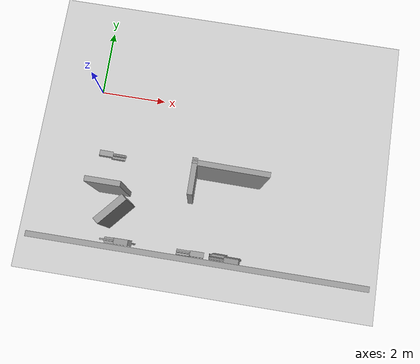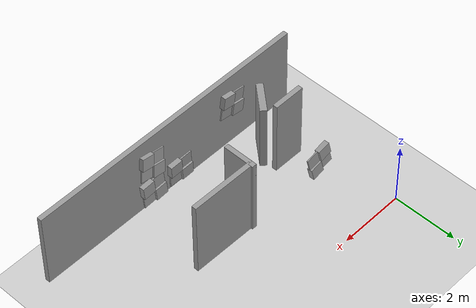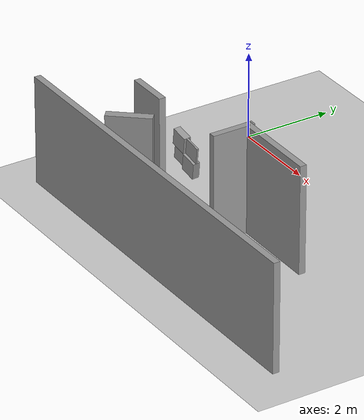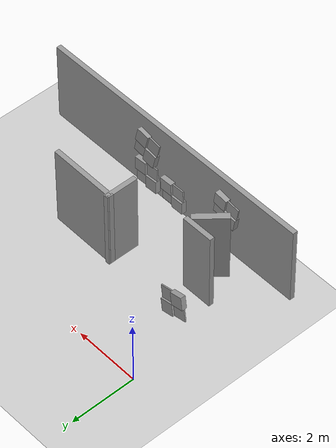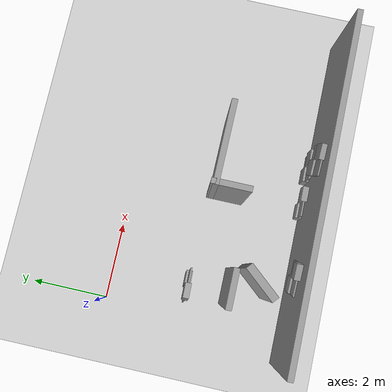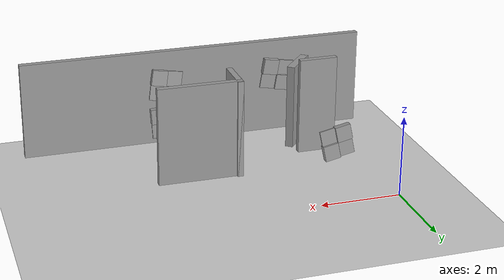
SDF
<sdf version="1.7">
 <world name="default">
  <model name="demo_clean">
   <static>1</static>
   <link name="Wall_16">
    <collision name="Wall_16_Collision">
     <geometry><box><size>9 0.15 2.5</size></box></geometry>
     <pose>0 0 1.25 0 -0 0</pose>
     <surface>
      <friction>
       <ode><mu>1</mu><mu2>1</mu2><fdir1>0 0 0</fdir1><slip1>0</slip1><slip2>0</slip2></ode>
       <torsional>
        <coefficient>1</coefficient>
        <patch_radius>0</patch_radius>
        <surface_radius>0</surface_radius>
        <use_patch_radius>1</use_patch_radius>
        <ode><slip>0</slip></ode>
       </torsional>
      </friction>
      <bounce><restitution_coefficient>0</restitution_coefficient><threshold>1e+06</threshold></bounce>
      <contact>
       <collide_without_contact>0</collide_without_contact>
       <collide_without_contact_bitmask>1</collide_without_contact_bitmask>
       <collide_bitmask>1</collide_bitmask>
       <ode>
        <soft_cfm>0</soft_cfm>
        <soft_erp>0.2</soft_erp>
        <kp>1e+13</kp>
        <kd>1</kd>
        <max_vel>0.01</max_vel>
        <min_depth>0</min_depth>
       </ode>
       <bullet>
        <split_impulse>1</split_impulse>
        <split_impulse_penetration_threshold>-0.01</split_impulse_penetration_threshold>
        <soft_cfm>0</soft_cfm>
        <soft_erp>0.2</soft_erp>
        <kp>1e+13</kp>
        <kd>1</kd>
       </bullet>
      </contact>
     </surface>
    </collision>
    <visual name="Wall_16_Visual">
     <geometry><box><size>9 0.15 2.5</size></box></geometry>
     <material>
      <script><name>Gazebo/Grey</name><uri>file://media/materials/scripts/gazebo.material</uri></script>
      <ambient>1 1 1 1</ambient>
      <shader type="pixel"><normal_map>default</normal_map></shader>
     </material>
     <pose>0 0 1.25 0 -0 0</pose>
    </visual>
    <pose>3.76125 -4.74021 0 0 -0 3.14159</pose>
   </link>
   <link name="Wall_23">
    <collision name="Wall_23_Collision">
     <geometry><box><size>0.981708 0.15 2.5</size></box></geometry>
     <pose>0 0 1.25 0 -0 0</pose>
     <surface>
      <friction>
       <ode><mu>1</mu><mu2>1</mu2><fdir1>0 0 0</fdir1><slip1>0</slip1><slip2>0</slip2></ode>
       <torsional>
        <coefficient>1</coefficient>
        <patch_radius>0</patch_radius>
        <surface_radius>0</surface_radius>
        <use_patch_radius>1</use_patch_radius>
        <ode><slip>0</slip></ode>
       </torsional>
      </friction>
      <bounce><restitution_coefficient>0</restitution_coefficient><threshold>1e+06</threshold></bounce>
      <contact>
       <collide_without_contact>0</collide_without_contact>
       <collide_without_contact_bitmask>1</collide_without_contact_bitmask>
       <collide_bitmask>1</collide_bitmask>
       <ode>
        <soft_cfm>0</soft_cfm>
        <soft_erp>0.2</soft_erp>
        <kp>1e+13</kp>
        <kd>1</kd>
        <max_vel>0.01</max_vel>
        <min_depth>0</min_depth>
       </ode>
       <bullet>
        <split_impulse>1</split_impulse>
        <split_impulse_penetration_threshold>-0.01</split_impulse_penetration_threshold>
        <soft_cfm>0</soft_cfm>
        <soft_erp>0.2</soft_erp>
        <kp>1e+13</kp>
        <kd>1</kd>
       </bullet>
      </contact>
     </surface>
    </collision>
    <visual name="Wall_23_Visual">
     <geometry><box><size>0.981708 0.15 2.5</size></box></geometry>
     <material>
      <script><name>Gazebo/Grey</name><uri>file://media/materials/scripts/gazebo.material</uri></script>
      <ambient>1 1 1 1</ambient>
      <shader type="pixel"><normal_map>default</normal_map></shader>
     </material>
     <pose>0 0 1.25 0 -0 0</pose>
    </visual>
    <inertial>
     <inertia><ixx>0</ixx><iyy>0</iyy><izz>0</izz><ixy>0</ixy><ixz>0</ixz><iyz>0</iyz></inertia>
     <mass>1</mass>
    </inertial>
    <pose>0.983425 -3.07697 0 0 -0 0</pose>
   </link>
   <link name="Wall_35">
    <collision name="Wall_35_Collision">
     <geometry><box><size>2.12444 0.15 2.5</size></box></geometry>
     <pose>0 0 1.25 0 -0 0</pose>
     <surface>
      <friction>
       <ode><mu>1</mu><mu2>1</mu2><fdir1>0 0 0</fdir1><slip1>0</slip1><slip2>0</slip2></ode>
       <torsional>
        <coefficient>1</coefficient>
        <patch_radius>0</patch_radius>
        <surface_radius>0</surface_radius>
        <use_patch_radius>1</use_patch_radius>
        <ode><slip>0</slip></ode>
       </torsional>
      </friction>
      <bounce><restitution_coefficient>0</restitution_coefficient><threshold>1e+06</threshold></bounce>
      <contact>
       <collide_without_contact>0</collide_without_contact>
       <collide_without_contact_bitmask>1</collide_without_contact_bitmask>
       <collide_bitmask>1</collide_bitmask>
       <ode>
        <soft_cfm>0</soft_cfm>
        <soft_erp>0.2</soft_erp>
        <kp>1e+13</kp>
        <kd>1</kd>
        <max_vel>0.01</max_vel>
        <min_depth>0</min_depth>
       </ode>
       <bullet>
        <split_impulse>1</split_impulse>
        <split_impulse_penetration_threshold>-0.01</split_impulse_penetration_threshold>
        <soft_cfm>0</soft_cfm>
        <soft_erp>0.2</soft_erp>
        <kp>1e+13</kp>
        <kd>1</kd>
       </bullet>
      </contact>
     </surface>
    </collision>
    <visual name="Wall_35_Visual">
     <geometry><box><size>2.12444 0.15 2.5</size></box></geometry>
     <material>
      <script><name>Gazebo/Grey</name><uri>file://media/materials/scripts/gazebo.material</uri></script>
      <ambient>1 1 1 1</ambient>
      <shader type="pixel"><normal_map>default</normal_map></shader>
     </material>
     <pose>0 0 1.25 0 -0 0</pose>
    </visual>
    <pose>4.31686 -2.19973 0 0 -0 3.13123</pose>
   </link>
   <link name="Wall_48">
    <collision name="Wall_48_Collision">
     <geometry><box><size>0.15 0.15 2.5</size></box></geometry>
     <pose>0 0 1.25 0 -0 0</pose>
     <surface>
      <friction>
       <ode><mu>1</mu><mu2>1</mu2><fdir1>0 0 0</fdir1><slip1>0</slip1><slip2>0</slip2></ode>
       <torsional>
        <coefficient>1</coefficient>
        <patch_radius>0</patch_radius>
        <surface_radius>0</surface_radius>
        <use_patch_radius>1</use_patch_radius>
        <ode><slip>0</slip></ode>
       </torsional>
      </friction>
      <bounce><restitution_coefficient>0</restitution_coefficient><threshold>1e+06</threshold></bounce>
      <contact>
       <collide_without_contact>0</collide_without_contact>
       <collide_without_contact_bitmask>1</collide_without_contact_bitmask>
       <collide_bitmask>1</collide_bitmask>
       <ode>
        <soft_cfm>0</soft_cfm>
        <soft_erp>0.2</soft_erp>
        <kp>1e+13</kp>
        <kd>1</kd>
        <max_vel>0.01</max_vel>
        <min_depth>0</min_depth>
       </ode>
       <bullet>
        <split_impulse>1</split_impulse>
        <split_impulse_penetration_threshold>-0.01</split_impulse_penetration_threshold>
        <soft_cfm>0</soft_cfm>
        <soft_erp>0.2</soft_erp>
        <kp>1e+13</kp>
        <kd>1</kd>
       </bullet>
      </contact>
     </surface>
    </collision>
    <visual name="Wall_48_Visual">
     <geometry><box><size>0.15 0.15 2.5</size></box></geometry>
     <material>
      <script><name>Gazebo/Grey</name><uri>file://media/materials/scripts/gazebo.material</uri></script>
      <ambient>1 1 1 1</ambient>
      <shader type="pixel"><normal_map>default</normal_map></shader>
     </material>
     <pose>0 0 1.25 0 -0 0</pose>
    </visual>
    <pose>3.33073 -2.13943 0 0 -0 0</pose>
   </link>
   <link name="Wall_49">
    <collision name="Wall_49_Collision">
     <geometry><box><size>1 0.15 2.5</size></box></geometry>
     <pose>0 0 1.25 0 -0 0</pose>
     <surface>
      <friction>
       <ode><mu>1</mu><mu2>1</mu2><fdir1>0 0 0</fdir1><slip1>0</slip1><slip2>0</slip2></ode>
       <torsional>
        <coefficient>1</coefficient>
        <patch_radius>0</patch_radius>
        <surface_radius>0</surface_radius>
        <use_patch_radius>1</use_patch_radius>
        <ode><slip>0</slip></ode>
       </torsional>
      </friction>
      <bounce><restitution_coefficient>0</restitution_coefficient><threshold>1e+06</threshold></bounce>
      <contact>
       <collide_without_contact>0</collide_without_contact>
       <collide_without_contact_bitmask>1</collide_without_contact_bitmask>
       <collide_bitmask>1</collide_bitmask>
       <ode>
        <soft_cfm>0</soft_cfm>
        <soft_erp>0.2</soft_erp>
        <kp>1e+13</kp>
        <kd>1</kd>
        <max_vel>0.01</max_vel>
        <min_depth>0</min_depth>
       </ode>
       <bullet>
        <split_impulse>1</split_impulse>
        <split_impulse_penetration_threshold>-0.01</split_impulse_penetration_threshold>
        <soft_cfm>0</soft_cfm>
        <soft_erp>0.2</soft_erp>
        <kp>1e+13</kp>
        <kd>1</kd>
       </bullet>
      </contact>
     </surface>
    </collision>
    <visual name="Wall_49_Visual">
     <geometry><box><size>1 0.15 2.5</size></box></geometry>
     <material>
      <script><name>Gazebo/Grey</name><uri>file://media/materials/scripts/gazebo.material</uri></script>
      <ambient>1 1 1 1</ambient>
      <shader type="pixel"><normal_map>default</normal_map></shader>
     </material>
     <pose>0 0 1.25 0 -0 0</pose>
    </visual>
    <pose>3.33073 -2.56443 0 0 0 -1.5708</pose>
   </link>
  </model>
  <model name="ground_plane">
   <static>1</static>
   <link name="link">
    <collision name="collision">
     <geometry><plane><normal>0 0 1</normal><size>100 100</size></plane></geometry>
     <surface>
      <contact><collide_bitmask>65535</collide_bitmask></contact>
      <friction><ode><mu>100</mu><mu2>50</mu2></ode></friction>
     </surface>
    </collision>
    <visual name="visual">
     <cast_shadows>0</cast_shadows>
     <geometry><plane><normal>0 0 1</normal><size>100 100</size></plane></geometry>
     <material>
      <script><uri>file://media/materials/scripts/gazebo.material</uri><name>Gazebo/Grey</name></script>
     </material>
    </visual>
   </link>
  </model>
  <model name="wall_slate_14">
   <static>1</static>
   <link name="link_0">
    <inertial><mass>1</mass></inertial>
    <gravity>0</gravity>
    <visual name="visual">
     <pose>0 0.2 0.2 0 -0 0</pose>
     <geometry><box><size>0.16 0.4 0.4</size></box></geometry>
     <material>
      <lighting>1</lighting>
      <script><uri>file://media/materials/scripts/gazebo.material</uri><name>Gazebo/Grey</name></script>
      <shader type="pixel"><normal_map>__default__</normal_map></shader>
      <ambient>0.3 0.3 0.3 1</ambient>
      <diffuse>0.7 0.7 0.7 1</diffuse>
      <specular>0.01 0.01 0.01 1</specular>
      <emissive>0 0 0 1</emissive>
     </material>
    </visual>
    <visual name="ModelPreview_0::link_0::visual_1">
     <pose>0 0.2 -0.2 0 -0 0</pose>
     <geometry><box><size>0.04 0.4 0.4</size></box></geometry>
     <material>
      <lighting>1</lighting>
      <script><uri>file://media/materials/scripts/gazebo.material</uri><name>Gazebo/Grey</name></script>
      <shader type="pixel"><normal_map>__default__</normal_map></shader>
      <ambient>0.3 0.3 0.3 1</ambient>
      <diffuse>0.7 0.7 0.7 1</diffuse>
      <specular>0.01 0.01 0.01 1</specular>
      <emissive>0 0 0 1</emissive>
     </material>
    </visual>
    <visual name="ModelPreview_0::link_0::visual_2">
     <pose>0 -0.2 0.2 0 -0 0</pose>
     <geometry><box><size>0.04 0.4 0.4</size></box></geometry>
     <material>
      <lighting>1</lighting>
      <script><uri>file://media/materials/scripts/gazebo.material</uri><name>Gazebo/Grey</name></script>
      <shader type="pixel"><normal_map>__default__</normal_map></shader>
      <ambient>0.3 0.3 0.3 1</ambient>
      <diffuse>0.7 0.7 0.7 1</diffuse>
      <specular>0.01 0.01 0.01 1</specular>
      <emissive>0 0 0 1</emissive>
     </material>
    </visual>
    <visual name="ModelPreview_0::link_0::visual_3">
     <pose>0 -0.2 -0.2 0 -0 0</pose>
     <geometry><box><size>0.16 0.4 0.4</size></box></geometry>
     <material>
      <lighting>1</lighting>
      <script><uri>file://media/materials/scripts/gazebo.material</uri><name>Gazebo/Grey</name></script>
      <shader type="pixel"><normal_map>__default__</normal_map></shader>
      <ambient>0.3 0.3 0.3 1</ambient>
      <diffuse>0.7 0.7 0.7 1</diffuse>
      <specular>0.01 0.01 0.01 1</specular>
      <emissive>0 0 0 1</emissive>
     </material>
    </visual>
    <collision name="collision_2">
     <pose>0 -0.2 0.2 0 -0 0</pose>
     <geometry><box><size>0.04 0.4 0.4</size></box></geometry>
     <surface>
      <friction>
       <ode><mu>1</mu><mu2>1</mu2><fdir1>0 0 0</fdir1><slip1>0</slip1><slip2>0</slip2></ode>
       <torsional>
        <coefficient>1</coefficient>
        <patch_radius>0</patch_radius>
        <surface_radius>0</surface_radius>
        <use_patch_radius>1</use_patch_radius>
        <ode><slip>0</slip></ode>
       </torsional>
      </friction>
      <bounce><restitution_coefficient>0</restitution_coefficient><threshold>1e+06</threshold></bounce>
      <contact>
       <collide_without_contact>0</collide_without_contact>
       <collide_without_contact_bitmask>1</collide_without_contact_bitmask>
       <collide_bitmask>1</collide_bitmask>
       <ode>
        <soft_cfm>0</soft_cfm>
        <soft_erp>0.2</soft_erp>
        <kp>1e+13</kp>
        <kd>1</kd>
        <max_vel>0.01</max_vel>
        <min_depth>0</min_depth>
       </ode>
       <bullet>
        <split_impulse>1</split_impulse>
        <split_impulse_penetration_threshold>-0.01</split_impulse_penetration_threshold>
        <soft_cfm>0</soft_cfm>
        <soft_erp>0.2</soft_erp>
        <kp>1e+13</kp>
        <kd>1</kd>
       </bullet>
      </contact>
     </surface>
    </collision>
    <collision name="collision_1">
     <pose>0 0.2 -0.2 0 -0 0</pose>
     <geometry><box><size>0.04 0.4 0.4</size></box></geometry>
     <surface>
      <friction>
       <ode><mu>1</mu><mu2>1</mu2><fdir1>0 0 0</fdir1><slip1>0</slip1><slip2>0</slip2></ode>
       <torsional>
        <coefficient>1</coefficient>
        <patch_radius>0</patch_radius>
        <surface_radius>0</surface_radius>
        <use_patch_radius>1</use_patch_radius>
        <ode><slip>0</slip></ode>
       </torsional>
      </friction>
      <bounce><restitution_coefficient>0</restitution_coefficient><threshold>1e+06</threshold></bounce>
      <contact>
       <collide_without_contact>0</collide_without_contact>
       <collide_without_contact_bitmask>1</collide_without_contact_bitmask>
       <collide_bitmask>1</collide_bitmask>
       <ode>
        <soft_cfm>0</soft_cfm>
        <soft_erp>0.2</soft_erp>
        <kp>1e+13</kp>
        <kd>1</kd>
        <max_vel>0.01</max_vel>
        <min_depth>0</min_depth>
       </ode>
       <bullet>
        <split_impulse>1</split_impulse>
        <split_impulse_penetration_threshold>-0.01</split_impulse_penetration_threshold>
        <soft_cfm>0</soft_cfm>
        <soft_erp>0.2</soft_erp>
        <kp>1e+13</kp>
        <kd>1</kd>
       </bullet>
      </contact>
     </surface>
    </collision>
    <collision name="collision_4">
     <pose>0 0.2 0.2 0 -0 0</pose>
     <geometry><box><size>0.16 0.4 0.4</size></box></geometry>
     <surface>
      <friction>
       <ode><mu>1</mu><mu2>1</mu2><fdir1>0 0 0</fdir1><slip1>0</slip1><slip2>0</slip2></ode>
       <torsional>
        <coefficient>1</coefficient>
        <patch_radius>0</patch_radius>
        <surface_radius>0</surface_radius>
        <use_patch_radius>1</use_patch_radius>
        <ode><slip>0</slip></ode>
       </torsional>
      </friction>
      <bounce><restitution_coefficient>0</restitution_coefficient><threshold>1e+06</threshold></bounce>
      <contact>
       <collide_without_contact>0</collide_without_contact>
       <collide_without_contact_bitmask>1</collide_without_contact_bitmask>
       <collide_bitmask>1</collide_bitmask>
       <ode>
        <soft_cfm>0</soft_cfm>
        <soft_erp>0.2</soft_erp>
        <kp>1e+13</kp>
        <kd>1</kd>
        <max_vel>0.01</max_vel>
        <min_depth>0</min_depth>
       </ode>
       <bullet>
        <split_impulse>1</split_impulse>
        <split_impulse_penetration_threshold>-0.01</split_impulse_penetration_threshold>
        <soft_cfm>0</soft_cfm>
        <soft_erp>0.2</soft_erp>
        <kp>1e+13</kp>
        <kd>1</kd>
       </bullet>
      </contact>
     </surface>
    </collision>
    <collision name="collision_3">
     <pose>0 -0.2 -0.2 0 -0 0</pose>
     <geometry><box><size>0.16 0.4 0.4</size></box></geometry>
     <surface>
      <friction>
       <ode><mu>1</mu><mu2>1</mu2><fdir1>0 0 0</fdir1><slip1>0</slip1><slip2>0</slip2></ode>
       <torsional>
        <coefficient>1</coefficient>
        <patch_radius>0</patch_radius>
        <surface_radius>0</surface_radius>
        <use_patch_radius>1</use_patch_radius>
        <ode><slip>0</slip></ode>
       </torsional>
      </friction>
      <bounce><restitution_coefficient>0</restitution_coefficient><threshold>1e+06</threshold></bounce>
      <contact>
       <collide_without_contact>0</collide_without_contact>
       <collide_without_contact_bitmask>1</collide_without_contact_bitmask>
       <collide_bitmask>1</collide_bitmask>
       <ode>
        <soft_cfm>0</soft_cfm>
        <soft_erp>0.2</soft_erp>
        <kp>1e+13</kp>
        <kd>1</kd>
        <max_vel>0.01</max_vel>
        <min_depth>0</min_depth>
       </ode>
       <bullet>
        <split_impulse>1</split_impulse>
        <split_impulse_penetration_threshold>-0.01</split_impulse_penetration_threshold>
        <soft_cfm>0</soft_cfm>
        <soft_erp>0.2</soft_erp>
        <kp>1e+13</kp>
        <kd>1</kd>
       </bullet>
      </contact>
     </surface>
    </collision>
   </link>
   <pose>4.56125 -4.56521 1.6 0.16 0.1 -1.5659</pose>
  </model>
  <model name="wall_slate_69">
   <static>1</static>
   <link name="link_0">
    <inertial><mass>1</mass></inertial>
    <gravity>0</gravity>
    <visual name="visual">
     <pose>0 0.2 0.2 0 -0 0</pose>
     <geometry><box><size>0.16 0.4 0.4</size></box></geometry>
     <material>
      <lighting>1</lighting>
      <script><uri>file://media/materials/scripts/gazebo.material</uri><name>Gazebo/Grey</name></script>
      <shader type="pixel"><normal_map>__default__</normal_map></shader>
      <ambient>0.3 0.3 0.3 1</ambient>
      <diffuse>0.7 0.7 0.7 1</diffuse>
      <specular>0.01 0.01 0.01 1</specular>
      <emissive>0 0 0 1</emissive>
     </material>
    </visual>
    <visual name="ModelPreview_0::link_0::visual_1">
     <pose>0 0.2 -0.2 0 -0 0</pose>
     <geometry><box><size>0.04 0.4 0.4</size></box></geometry>
     <material>
      <lighting>1</lighting>
      <script><uri>file://media/materials/scripts/gazebo.material</uri><name>Gazebo/Grey</name></script>
      <shader type="pixel"><normal_map>__default__</normal_map></shader>
      <ambient>0.3 0.3 0.3 1</ambient>
      <diffuse>0.7 0.7 0.7 1</diffuse>
      <specular>0.01 0.01 0.01 1</specular>
      <emissive>0 0 0 1</emissive>
     </material>
    </visual>
    <visual name="ModelPreview_0::link_0::visual_2">
     <pose>0 -0.2 0.2 0 -0 0</pose>
     <geometry><box><size>0.04 0.4 0.4</size></box></geometry>
     <material>
      <lighting>1</lighting>
      <script><uri>file://media/materials/scripts/gazebo.material</uri><name>Gazebo/Grey</name></script>
      <shader type="pixel"><normal_map>__default__</normal_map></shader>
      <ambient>0.3 0.3 0.3 1</ambient>
      <diffuse>0.7 0.7 0.7 1</diffuse>
      <specular>0.01 0.01 0.01 1</specular>
      <emissive>0 0 0 1</emissive>
     </material>
    </visual>
    <visual name="ModelPreview_0::link_0::visual_3">
     <pose>0 -0.2 -0.2 0 -0 0</pose>
     <geometry><box><size>0.16 0.4 0.4</size></box></geometry>
     <material>
      <lighting>1</lighting>
      <script><uri>file://media/materials/scripts/gazebo.material</uri><name>Gazebo/Grey</name></script>
      <shader type="pixel"><normal_map>__default__</normal_map></shader>
      <ambient>0.3 0.3 0.3 1</ambient>
      <diffuse>0.7 0.7 0.7 1</diffuse>
      <specular>0.01 0.01 0.01 1</specular>
      <emissive>0 0 0 1</emissive>
     </material>
    </visual>
    <collision name="collision_2">
     <pose>0 -0.2 0.2 0 -0 0</pose>
     <geometry><box><size>0.04 0.4 0.4</size></box></geometry>
     <surface>
      <friction>
       <ode><mu>1</mu><mu2>1</mu2><fdir1>0 0 0</fdir1><slip1>0</slip1><slip2>0</slip2></ode>
       <torsional>
        <coefficient>1</coefficient>
        <patch_radius>0</patch_radius>
        <surface_radius>0</surface_radius>
        <use_patch_radius>1</use_patch_radius>
        <ode><slip>0</slip></ode>
       </torsional>
      </friction>
      <bounce><restitution_coefficient>0</restitution_coefficient><threshold>1e+06</threshold></bounce>
      <contact>
       <collide_without_contact>0</collide_without_contact>
       <collide_without_contact_bitmask>1</collide_without_contact_bitmask>
       <collide_bitmask>1</collide_bitmask>
       <ode>
        <soft_cfm>0</soft_cfm>
        <soft_erp>0.2</soft_erp>
        <kp>1e+13</kp>
        <kd>1</kd>
        <max_vel>0.01</max_vel>
        <min_depth>0</min_depth>
       </ode>
       <bullet>
        <split_impulse>1</split_impulse>
        <split_impulse_penetration_threshold>-0.01</split_impulse_penetration_threshold>
        <soft_cfm>0</soft_cfm>
        <soft_erp>0.2</soft_erp>
        <kp>1e+13</kp>
        <kd>1</kd>
       </bullet>
      </contact>
     </surface>
    </collision>
    <collision name="collision_1">
     <pose>0 0.2 -0.2 0 -0 0</pose>
     <geometry><box><size>0.04 0.4 0.4</size></box></geometry>
     <surface>
      <friction>
       <ode><mu>1</mu><mu2>1</mu2><fdir1>0 0 0</fdir1><slip1>0</slip1><slip2>0</slip2></ode>
       <torsional>
        <coefficient>1</coefficient>
        <patch_radius>0</patch_radius>
        <surface_radius>0</surface_radius>
        <use_patch_radius>1</use_patch_radius>
        <ode><slip>0</slip></ode>
       </torsional>
      </friction>
      <bounce><restitution_coefficient>0</restitution_coefficient><threshold>1e+06</threshold></bounce>
      <contact>
       <collide_without_contact>0</collide_without_contact>
       <collide_without_contact_bitmask>1</collide_without_contact_bitmask>
       <collide_bitmask>1</collide_bitmask>
       <ode>
        <soft_cfm>0</soft_cfm>
        <soft_erp>0.2</soft_erp>
        <kp>1e+13</kp>
        <kd>1</kd>
        <max_vel>0.01</max_vel>
        <min_depth>0</min_depth>
       </ode>
       <bullet>
        <split_impulse>1</split_impulse>
        <split_impulse_penetration_threshold>-0.01</split_impulse_penetration_threshold>
        <soft_cfm>0</soft_cfm>
        <soft_erp>0.2</soft_erp>
        <kp>1e+13</kp>
        <kd>1</kd>
       </bullet>
      </contact>
     </surface>
    </collision>
    <collision name="collision_4">
     <pose>0 0.2 0.2 0 -0 0</pose>
     <geometry><box><size>0.16 0.4 0.4</size></box></geometry>
     <surface>
      <friction>
       <ode><mu>1</mu><mu2>1</mu2><fdir1>0 0 0</fdir1><slip1>0</slip1><slip2>0</slip2></ode>
       <torsional>
        <coefficient>1</coefficient>
        <patch_radius>0</patch_radius>
        <surface_radius>0</surface_radius>
        <use_patch_radius>1</use_patch_radius>
        <ode><slip>0</slip></ode>
       </torsional>
      </friction>
      <bounce><restitution_coefficient>0</restitution_coefficient><threshold>1e+06</threshold></bounce>
      <contact>
       <collide_without_contact>0</collide_without_contact>
       <collide_without_contact_bitmask>1</collide_without_contact_bitmask>
       <collide_bitmask>1</collide_bitmask>
       <ode>
        <soft_cfm>0</soft_cfm>
        <soft_erp>0.2</soft_erp>
        <kp>1e+13</kp>
        <kd>1</kd>
        <max_vel>0.01</max_vel>
        <min_depth>0</min_depth>
       </ode>
       <bullet>
        <split_impulse>1</split_impulse>
        <split_impulse_penetration_threshold>-0.01</split_impulse_penetration_threshold>
        <soft_cfm>0</soft_cfm>
        <soft_erp>0.2</soft_erp>
        <kp>1e+13</kp>
        <kd>1</kd>
       </bullet>
      </contact>
     </surface>
    </collision>
    <collision name="collision_3">
     <pose>0 -0.2 -0.2 0 -0 0</pose>
     <geometry><box><size>0.16 0.4 0.4</size></box></geometry>
     <surface>
      <friction>
       <ode><mu>1</mu><mu2>1</mu2><fdir1>0 0 0</fdir1><slip1>0</slip1><slip2>0</slip2></ode>
       <torsional>
        <coefficient>1</coefficient>
        <patch_radius>0</patch_radius>
        <surface_radius>0</surface_radius>
        <use_patch_radius>1</use_patch_radius>
        <ode><slip>0</slip></ode>
       </torsional>
      </friction>
      <bounce><restitution_coefficient>0</restitution_coefficient><threshold>1e+06</threshold></bounce>
      <contact>
       <collide_without_contact>0</collide_without_contact>
       <collide_without_contact_bitmask>1</collide_without_contact_bitmask>
       <collide_bitmask>1</collide_bitmask>
       <ode>
        <soft_cfm>0</soft_cfm>
        <soft_erp>0.2</soft_erp>
        <kp>1e+13</kp>
        <kd>1</kd>
        <max_vel>0.01</max_vel>
        <min_depth>0</min_depth>
       </ode>
       <bullet>
        <split_impulse>1</split_impulse>
        <split_impulse_penetration_threshold>-0.01</split_impulse_penetration_threshold>
        <soft_cfm>0</soft_cfm>
        <soft_erp>0.2</soft_erp>
        <kp>1e+13</kp>
        <kd>1</kd>
       </bullet>
      </contact>
     </surface>
    </collision>
   </link>
   <pose>0.795923 -2.06788 0.6 0.2 -0.06 1.5757</pose>
  </model>
  <model name="wall_slate_83">
   <static>1</static>
   <link name="link_0">
    <inertial><mass>1</mass></inertial>
    <gravity>0</gravity>
    <visual name="visual">
     <pose>0 0.2 0.2 0 -0 0</pose>
     <geometry><box><size>0.16 0.4 0.4</size></box></geometry>
     <material>
      <lighting>1</lighting>
      <script><uri>file://media/materials/scripts/gazebo.material</uri><name>Gazebo/Grey</name></script>
      <shader type="pixel"><normal_map>__default__</normal_map></shader>
      <ambient>0.3 0.3 0.3 1</ambient>
      <diffuse>0.7 0.7 0.7 1</diffuse>
      <specular>0.01 0.01 0.01 1</specular>
      <emissive>0 0 0 1</emissive>
     </material>
    </visual>
    <visual name="ModelPreview_0::link_0::visual_1">
     <pose>0 0.2 -0.2 0 -0 0</pose>
     <geometry><box><size>0.04 0.4 0.4</size></box></geometry>
     <material>
      <lighting>1</lighting>
      <script><uri>file://media/materials/scripts/gazebo.material</uri><name>Gazebo/Grey</name></script>
      <shader type="pixel"><normal_map>__default__</normal_map></shader>
      <ambient>0.3 0.3 0.3 1</ambient>
      <diffuse>0.7 0.7 0.7 1</diffuse>
      <specular>0.01 0.01 0.01 1</specular>
      <emissive>0 0 0 1</emissive>
     </material>
    </visual>
    <visual name="ModelPreview_0::link_0::visual_2">
     <pose>0 -0.2 0.2 0 -0 0</pose>
     <geometry><box><size>0.04 0.4 0.4</size></box></geometry>
     <material>
      <lighting>1</lighting>
      <script><uri>file://media/materials/scripts/gazebo.material</uri><name>Gazebo/Grey</name></script>
      <shader type="pixel"><normal_map>__default__</normal_map></shader>
      <ambient>0.3 0.3 0.3 1</ambient>
      <diffuse>0.7 0.7 0.7 1</diffuse>
      <specular>0.01 0.01 0.01 1</specular>
      <emissive>0 0 0 1</emissive>
     </material>
    </visual>
    <visual name="ModelPreview_0::link_0::visual_3">
     <pose>0 -0.2 -0.2 0 -0 0</pose>
     <geometry><box><size>0.16 0.4 0.4</size></box></geometry>
     <material>
      <lighting>1</lighting>
      <script><uri>file://media/materials/scripts/gazebo.material</uri><name>Gazebo/Grey</name></script>
      <shader type="pixel"><normal_map>__default__</normal_map></shader>
      <ambient>0.3 0.3 0.3 1</ambient>
      <diffuse>0.7 0.7 0.7 1</diffuse>
      <specular>0.01 0.01 0.01 1</specular>
      <emissive>0 0 0 1</emissive>
     </material>
    </visual>
    <collision name="collision_2">
     <pose>0 -0.2 0.2 0 -0 0</pose>
     <geometry><box><size>0.04 0.4 0.4</size></box></geometry>
     <surface>
      <friction>
       <ode><mu>1</mu><mu2>1</mu2><fdir1>0 0 0</fdir1><slip1>0</slip1><slip2>0</slip2></ode>
       <torsional>
        <coefficient>1</coefficient>
        <patch_radius>0</patch_radius>
        <surface_radius>0</surface_radius>
        <use_patch_radius>1</use_patch_radius>
        <ode><slip>0</slip></ode>
       </torsional>
      </friction>
      <bounce><restitution_coefficient>0</restitution_coefficient><threshold>1e+06</threshold></bounce>
      <contact>
       <collide_without_contact>0</collide_without_contact>
       <collide_without_contact_bitmask>1</collide_without_contact_bitmask>
       <collide_bitmask>1</collide_bitmask>
       <ode>
        <soft_cfm>0</soft_cfm>
        <soft_erp>0.2</soft_erp>
        <kp>1e+13</kp>
        <kd>1</kd>
        <max_vel>0.01</max_vel>
        <min_depth>0</min_depth>
       </ode>
       <bullet>
        <split_impulse>1</split_impulse>
        <split_impulse_penetration_threshold>-0.01</split_impulse_penetration_threshold>
        <soft_cfm>0</soft_cfm>
        <soft_erp>0.2</soft_erp>
        <kp>1e+13</kp>
        <kd>1</kd>
       </bullet>
      </contact>
     </surface>
    </collision>
    <collision name="collision_1">
     <pose>0 0.2 -0.2 0 -0 0</pose>
     <geometry><box><size>0.04 0.4 0.4</size></box></geometry>
     <surface>
      <friction>
       <ode><mu>1</mu><mu2>1</mu2><fdir1>0 0 0</fdir1><slip1>0</slip1><slip2>0</slip2></ode>
       <torsional>
        <coefficient>1</coefficient>
        <patch_radius>0</patch_radius>
        <surface_radius>0</surface_radius>
        <use_patch_radius>1</use_patch_radius>
        <ode><slip>0</slip></ode>
       </torsional>
      </friction>
      <bounce><restitution_coefficient>0</restitution_coefficient><threshold>1e+06</threshold></bounce>
      <contact>
       <collide_without_contact>0</collide_without_contact>
       <collide_without_contact_bitmask>1</collide_without_contact_bitmask>
       <collide_bitmask>1</collide_bitmask>
       <ode>
        <soft_cfm>0</soft_cfm>
        <soft_erp>0.2</soft_erp>
        <kp>1e+13</kp>
        <kd>1</kd>
        <max_vel>0.01</max_vel>
        <min_depth>0</min_depth>
       </ode>
       <bullet>
        <split_impulse>1</split_impulse>
        <split_impulse_penetration_threshold>-0.01</split_impulse_penetration_threshold>
        <soft_cfm>0</soft_cfm>
        <soft_erp>0.2</soft_erp>
        <kp>1e+13</kp>
        <kd>1</kd>
       </bullet>
      </contact>
     </surface>
    </collision>
    <collision name="collision_4">
     <pose>0 0.2 0.2 0 -0 0</pose>
     <geometry><box><size>0.16 0.4 0.4</size></box></geometry>
     <surface>
      <friction>
       <ode><mu>1</mu><mu2>1</mu2><fdir1>0 0 0</fdir1><slip1>0</slip1><slip2>0</slip2></ode>
       <torsional>
        <coefficient>1</coefficient>
        <patch_radius>0</patch_radius>
        <surface_radius>0</surface_radius>
        <use_patch_radius>1</use_patch_radius>
        <ode><slip>0</slip></ode>
       </torsional>
      </friction>
      <bounce><restitution_coefficient>0</restitution_coefficient><threshold>1e+06</threshold></bounce>
      <contact>
       <collide_without_contact>0</collide_without_contact>
       <collide_without_contact_bitmask>1</collide_without_contact_bitmask>
       <collide_bitmask>1</collide_bitmask>
       <ode>
        <soft_cfm>0</soft_cfm>
        <soft_erp>0.2</soft_erp>
        <kp>1e+13</kp>
        <kd>1</kd>
        <max_vel>0.01</max_vel>
        <min_depth>0</min_depth>
       </ode>
       <bullet>
        <split_impulse>1</split_impulse>
        <split_impulse_penetration_threshold>-0.01</split_impulse_penetration_threshold>
        <soft_cfm>0</soft_cfm>
        <soft_erp>0.2</soft_erp>
        <kp>1e+13</kp>
        <kd>1</kd>
       </bullet>
      </contact>
     </surface>
    </collision>
    <collision name="collision_3">
     <pose>0 -0.2 -0.2 0 -0 0</pose>
     <geometry><box><size>0.16 0.4 0.4</size></box></geometry>
     <surface>
      <friction>
       <ode><mu>1</mu><mu2>1</mu2><fdir1>0 0 0</fdir1><slip1>0</slip1><slip2>0</slip2></ode>
       <torsional>
        <coefficient>1</coefficient>
        <patch_radius>0</patch_radius>
        <surface_radius>0</surface_radius>
        <use_patch_radius>1</use_patch_radius>
        <ode><slip>0</slip></ode>
       </torsional>
      </friction>
      <bounce><restitution_coefficient>0</restitution_coefficient><threshold>1e+06</threshold></bounce>
      <contact>
       <collide_without_contact>0</collide_without_contact>
       <collide_without_contact_bitmask>1</collide_without_contact_bitmask>
       <collide_bitmask>1</collide_bitmask>
       <ode>
        <soft_cfm>0</soft_cfm>
        <soft_erp>0.2</soft_erp>
        <kp>1e+13</kp>
        <kd>1</kd>
        <max_vel>0.01</max_vel>
        <min_depth>0</min_depth>
       </ode>
       <bullet>
        <split_impulse>1</split_impulse>
        <split_impulse_penetration_threshold>-0.01</split_impulse_penetration_threshold>
        <soft_cfm>0</soft_cfm>
        <soft_erp>0.2</soft_erp>
        <kp>1e+13</kp>
        <kd>1</kd>
       </bullet>
      </contact>
     </surface>
    </collision>
   </link>
   <pose>4.56125 -4.56521 0.6 -0.06 0.04 -1.5659</pose>
  </model>
  <model name="wall_slate_95">
   <static>1</static>
   <link name="link_0">
    <inertial><mass>1</mass></inertial>
    <gravity>0</gravity>
    <visual name="visual">
     <pose>0 0.2 0.2 0 -0 0</pose>
     <geometry><box><size>0.16 0.4 0.4</size></box></geometry>
     <material>
      <lighting>1</lighting>
      <script><uri>file://media/materials/scripts/gazebo.material</uri><name>Gazebo/Grey</name></script>
      <shader type="pixel"><normal_map>__default__</normal_map></shader>
      <ambient>0.3 0.3 0.3 1</ambient>
      <diffuse>0.7 0.7 0.7 1</diffuse>
      <specular>0.01 0.01 0.01 1</specular>
      <emissive>0 0 0 1</emissive>
     </material>
    </visual>
    <visual name="ModelPreview_0::link_0::visual_1">
     <pose>0 0.2 -0.2 0 -0 0</pose>
     <geometry><box><size>0.04 0.4 0.4</size></box></geometry>
     <material>
      <lighting>1</lighting>
      <script><uri>file://media/materials/scripts/gazebo.material</uri><name>Gazebo/Grey</name></script>
      <shader type="pixel"><normal_map>__default__</normal_map></shader>
      <ambient>0.3 0.3 0.3 1</ambient>
      <diffuse>0.7 0.7 0.7 1</diffuse>
      <specular>0.01 0.01 0.01 1</specular>
      <emissive>0 0 0 1</emissive>
     </material>
    </visual>
    <visual name="ModelPreview_0::link_0::visual_2">
     <pose>0 -0.2 0.2 0 -0 0</pose>
     <geometry><box><size>0.04 0.4 0.4</size></box></geometry>
     <material>
      <lighting>1</lighting>
      <script><uri>file://media/materials/scripts/gazebo.material</uri><name>Gazebo/Grey</name></script>
      <shader type="pixel"><normal_map>__default__</normal_map></shader>
      <ambient>0.3 0.3 0.3 1</ambient>
      <diffuse>0.7 0.7 0.7 1</diffuse>
      <specular>0.01 0.01 0.01 1</specular>
      <emissive>0 0 0 1</emissive>
     </material>
    </visual>
    <visual name="ModelPreview_0::link_0::visual_3">
     <pose>0 -0.2 -0.2 0 -0 0</pose>
     <geometry><box><size>0.16 0.4 0.4</size></box></geometry>
     <material>
      <lighting>1</lighting>
      <script><uri>file://media/materials/scripts/gazebo.material</uri><name>Gazebo/Grey</name></script>
      <shader type="pixel"><normal_map>__default__</normal_map></shader>
      <ambient>0.3 0.3 0.3 1</ambient>
      <diffuse>0.7 0.7 0.7 1</diffuse>
      <specular>0.01 0.01 0.01 1</specular>
      <emissive>0 0 0 1</emissive>
     </material>
    </visual>
    <collision name="collision_2">
     <pose>0 -0.2 0.2 0 -0 0</pose>
     <geometry><box><size>0.04 0.4 0.4</size></box></geometry>
     <surface>
      <friction>
       <ode><mu>1</mu><mu2>1</mu2><fdir1>0 0 0</fdir1><slip1>0</slip1><slip2>0</slip2></ode>
       <torsional>
        <coefficient>1</coefficient>
        <patch_radius>0</patch_radius>
        <surface_radius>0</surface_radius>
        <use_patch_radius>1</use_patch_radius>
        <ode><slip>0</slip></ode>
       </torsional>
      </friction>
      <bounce><restitution_coefficient>0</restitution_coefficient><threshold>1e+06</threshold></bounce>
      <contact>
       <collide_without_contact>0</collide_without_contact>
       <collide_without_contact_bitmask>1</collide_without_contact_bitmask>
       <collide_bitmask>1</collide_bitmask>
       <ode>
        <soft_cfm>0</soft_cfm>
        <soft_erp>0.2</soft_erp>
        <kp>1e+13</kp>
        <kd>1</kd>
        <max_vel>0.01</max_vel>
        <min_depth>0</min_depth>
       </ode>
       <bullet>
        <split_impulse>1</split_impulse>
        <split_impulse_penetration_threshold>-0.01</split_impulse_penetration_threshold>
        <soft_cfm>0</soft_cfm>
        <soft_erp>0.2</soft_erp>
        <kp>1e+13</kp>
        <kd>1</kd>
       </bullet>
      </contact>
     </surface>
    </collision>
    <collision name="collision_1">
     <pose>0 0.2 -0.2 0 -0 0</pose>
     <geometry><box><size>0.04 0.4 0.4</size></box></geometry>
     <surface>
      <friction>
       <ode><mu>1</mu><mu2>1</mu2><fdir1>0 0 0</fdir1><slip1>0</slip1><slip2>0</slip2></ode>
       <torsional>
        <coefficient>1</coefficient>
        <patch_radius>0</patch_radius>
        <surface_radius>0</surface_radius>
        <use_patch_radius>1</use_patch_radius>
        <ode><slip>0</slip></ode>
       </torsional>
      </friction>
      <bounce><restitution_coefficient>0</restitution_coefficient><threshold>1e+06</threshold></bounce>
      <contact>
       <collide_without_contact>0</collide_without_contact>
       <collide_without_contact_bitmask>1</collide_without_contact_bitmask>
       <collide_bitmask>1</collide_bitmask>
       <ode>
        <soft_cfm>0</soft_cfm>
        <soft_erp>0.2</soft_erp>
        <kp>1e+13</kp>
        <kd>1</kd>
        <max_vel>0.01</max_vel>
        <min_depth>0</min_depth>
       </ode>
       <bullet>
        <split_impulse>1</split_impulse>
        <split_impulse_penetration_threshold>-0.01</split_impulse_penetration_threshold>
        <soft_cfm>0</soft_cfm>
        <soft_erp>0.2</soft_erp>
        <kp>1e+13</kp>
        <kd>1</kd>
       </bullet>
      </contact>
     </surface>
    </collision>
    <collision name="collision_4">
     <pose>0 0.2 0.2 0 -0 0</pose>
     <geometry><box><size>0.16 0.4 0.4</size></box></geometry>
     <surface>
      <friction>
       <ode><mu>1</mu><mu2>1</mu2><fdir1>0 0 0</fdir1><slip1>0</slip1><slip2>0</slip2></ode>
       <torsional>
        <coefficient>1</coefficient>
        <patch_radius>0</patch_radius>
        <surface_radius>0</surface_radius>
        <use_patch_radius>1</use_patch_radius>
        <ode><slip>0</slip></ode>
       </torsional>
      </friction>
      <bounce><restitution_coefficient>0</restitution_coefficient><threshold>1e+06</threshold></bounce>
      <contact>
       <collide_without_contact>0</collide_without_contact>
       <collide_without_contact_bitmask>1</collide_without_contact_bitmask>
       <collide_bitmask>1</collide_bitmask>
       <ode>
        <soft_cfm>0</soft_cfm>
        <soft_erp>0.2</soft_erp>
        <kp>1e+13</kp>
        <kd>1</kd>
        <max_vel>0.01</max_vel>
        <min_depth>0</min_depth>
       </ode>
       <bullet>
        <split_impulse>1</split_impulse>
        <split_impulse_penetration_threshold>-0.01</split_impulse_penetration_threshold>
        <soft_cfm>0</soft_cfm>
        <soft_erp>0.2</soft_erp>
        <kp>1e+13</kp>
        <kd>1</kd>
       </bullet>
      </contact>
     </surface>
    </collision>
    <collision name="collision_3">
     <pose>0 -0.2 -0.2 0 -0 0</pose>
     <geometry><box><size>0.16 0.4 0.4</size></box></geometry>
     <surface>
      <friction>
       <ode><mu>1</mu><mu2>1</mu2><fdir1>0 0 0</fdir1><slip1>0</slip1><slip2>0</slip2></ode>
       <torsional>
        <coefficient>1</coefficient>
        <patch_radius>0</patch_radius>
        <surface_radius>0</surface_radius>
        <use_patch_radius>1</use_patch_radius>
        <ode><slip>0</slip></ode>
       </torsional>
      </friction>
      <bounce><restitution_coefficient>0</restitution_coefficient><threshold>1e+06</threshold></bounce>
      <contact>
       <collide_without_contact>0</collide_without_contact>
       <collide_without_contact_bitmask>1</collide_without_contact_bitmask>
       <collide_bitmask>1</collide_bitmask>
       <ode>
        <soft_cfm>0</soft_cfm>
        <soft_erp>0.2</soft_erp>
        <kp>1e+13</kp>
        <kd>1</kd>
        <max_vel>0.01</max_vel>
        <min_depth>0</min_depth>
       </ode>
       <bullet>
        <split_impulse>1</split_impulse>
        <split_impulse_penetration_threshold>-0.01</split_impulse_penetration_threshold>
        <soft_cfm>0</soft_cfm>
        <soft_erp>0.2</soft_erp>
        <kp>1e+13</kp>
        <kd>1</kd>
       </bullet>
      </contact>
     </surface>
    </collision>
   </link>
   <pose>3.56125 -4.56521 0.6 -0.02 -0.02 -1.5659</pose>
  </model>
  <model name="wall_slate_96">
   <static>1</static>
   <link name="link_0">
    <inertial><mass>1</mass></inertial>
    <gravity>0</gravity>
    <visual name="visual">
     <pose>0 0.2 0.2 0 -0 0</pose>
     <geometry><box><size>0.16 0.4 0.4</size></box></geometry>
     <material>
      <lighting>1</lighting>
      <script><uri>file://media/materials/scripts/gazebo.material</uri><name>Gazebo/Grey</name></script>
      <shader type="pixel"><normal_map>__default__</normal_map></shader>
      <ambient>0.3 0.3 0.3 1</ambient>
      <diffuse>0.7 0.7 0.7 1</diffuse>
      <specular>0.01 0.01 0.01 1</specular>
      <emissive>0 0 0 1</emissive>
     </material>
    </visual>
    <visual name="ModelPreview_0::link_0::visual_1">
     <pose>0 0.2 -0.2 0 -0 0</pose>
     <geometry><box><size>0.04 0.4 0.4</size></box></geometry>
     <material>
      <lighting>1</lighting>
      <script><uri>file://media/materials/scripts/gazebo.material</uri><name>Gazebo/Grey</name></script>
      <shader type="pixel"><normal_map>__default__</normal_map></shader>
      <ambient>0.3 0.3 0.3 1</ambient>
      <diffuse>0.7 0.7 0.7 1</diffuse>
      <specular>0.01 0.01 0.01 1</specular>
      <emissive>0 0 0 1</emissive>
     </material>
    </visual>
    <visual name="ModelPreview_0::link_0::visual_2">
     <pose>0 -0.2 0.2 0 -0 0</pose>
     <geometry><box><size>0.04 0.4 0.4</size></box></geometry>
     <material>
      <lighting>1</lighting>
      <script><uri>file://media/materials/scripts/gazebo.material</uri><name>Gazebo/Grey</name></script>
      <shader type="pixel"><normal_map>__default__</normal_map></shader>
      <ambient>0.3 0.3 0.3 1</ambient>
      <diffuse>0.7 0.7 0.7 1</diffuse>
      <specular>0.01 0.01 0.01 1</specular>
      <emissive>0 0 0 1</emissive>
     </material>
    </visual>
    <visual name="ModelPreview_0::link_0::visual_3">
     <pose>0 -0.2 -0.2 0 -0 0</pose>
     <geometry><box><size>0.16 0.4 0.4</size></box></geometry>
     <material>
      <lighting>1</lighting>
      <script><uri>file://media/materials/scripts/gazebo.material</uri><name>Gazebo/Grey</name></script>
      <shader type="pixel"><normal_map>__default__</normal_map></shader>
      <ambient>0.3 0.3 0.3 1</ambient>
      <diffuse>0.7 0.7 0.7 1</diffuse>
      <specular>0.01 0.01 0.01 1</specular>
      <emissive>0 0 0 1</emissive>
     </material>
    </visual>
    <collision name="collision_2">
     <pose>0 -0.2 0.2 0 -0 0</pose>
     <geometry><box><size>0.04 0.4 0.4</size></box></geometry>
     <surface>
      <friction>
       <ode><mu>1</mu><mu2>1</mu2><fdir1>0 0 0</fdir1><slip1>0</slip1><slip2>0</slip2></ode>
       <torsional>
        <coefficient>1</coefficient>
        <patch_radius>0</patch_radius>
        <surface_radius>0</surface_radius>
        <use_patch_radius>1</use_patch_radius>
        <ode><slip>0</slip></ode>
       </torsional>
      </friction>
      <bounce><restitution_coefficient>0</restitution_coefficient><threshold>1e+06</threshold></bounce>
      <contact>
       <collide_without_contact>0</collide_without_contact>
       <collide_without_contact_bitmask>1</collide_without_contact_bitmask>
       <collide_bitmask>1</collide_bitmask>
       <ode>
        <soft_cfm>0</soft_cfm>
        <soft_erp>0.2</soft_erp>
        <kp>1e+13</kp>
        <kd>1</kd>
        <max_vel>0.01</max_vel>
        <min_depth>0</min_depth>
       </ode>
       <bullet>
        <split_impulse>1</split_impulse>
        <split_impulse_penetration_threshold>-0.01</split_impulse_penetration_threshold>
        <soft_cfm>0</soft_cfm>
        <soft_erp>0.2</soft_erp>
        <kp>1e+13</kp>
        <kd>1</kd>
       </bullet>
      </contact>
     </surface>
    </collision>
    <collision name="collision_1">
     <pose>0 0.2 -0.2 0 -0 0</pose>
     <geometry><box><size>0.04 0.4 0.4</size></box></geometry>
     <surface>
      <friction>
       <ode><mu>1</mu><mu2>1</mu2><fdir1>0 0 0</fdir1><slip1>0</slip1><slip2>0</slip2></ode>
       <torsional>
        <coefficient>1</coefficient>
        <patch_radius>0</patch_radius>
        <surface_radius>0</surface_radius>
        <use_patch_radius>1</use_patch_radius>
        <ode><slip>0</slip></ode>
       </torsional>
      </friction>
      <bounce><restitution_coefficient>0</restitution_coefficient><threshold>1e+06</threshold></bounce>
      <contact>
       <collide_without_contact>0</collide_without_contact>
       <collide_without_contact_bitmask>1</collide_without_contact_bitmask>
       <collide_bitmask>1</collide_bitmask>
       <ode>
        <soft_cfm>0</soft_cfm>
        <soft_erp>0.2</soft_erp>
        <kp>1e+13</kp>
        <kd>1</kd>
        <max_vel>0.01</max_vel>
        <min_depth>0</min_depth>
       </ode>
       <bullet>
        <split_impulse>1</split_impulse>
        <split_impulse_penetration_threshold>-0.01</split_impulse_penetration_threshold>
        <soft_cfm>0</soft_cfm>
        <soft_erp>0.2</soft_erp>
        <kp>1e+13</kp>
        <kd>1</kd>
       </bullet>
      </contact>
     </surface>
    </collision>
    <collision name="collision_4">
     <pose>0 0.2 0.2 0 -0 0</pose>
     <geometry><box><size>0.16 0.4 0.4</size></box></geometry>
     <surface>
      <friction>
       <ode><mu>1</mu><mu2>1</mu2><fdir1>0 0 0</fdir1><slip1>0</slip1><slip2>0</slip2></ode>
       <torsional>
        <coefficient>1</coefficient>
        <patch_radius>0</patch_radius>
        <surface_radius>0</surface_radius>
        <use_patch_radius>1</use_patch_radius>
        <ode><slip>0</slip></ode>
       </torsional>
      </friction>
      <bounce><restitution_coefficient>0</restitution_coefficient><threshold>1e+06</threshold></bounce>
      <contact>
       <collide_without_contact>0</collide_without_contact>
       <collide_without_contact_bitmask>1</collide_without_contact_bitmask>
       <collide_bitmask>1</collide_bitmask>
       <ode>
        <soft_cfm>0</soft_cfm>
        <soft_erp>0.2</soft_erp>
        <kp>1e+13</kp>
        <kd>1</kd>
        <max_vel>0.01</max_vel>
        <min_depth>0</min_depth>
       </ode>
       <bullet>
        <split_impulse>1</split_impulse>
        <split_impulse_penetration_threshold>-0.01</split_impulse_penetration_threshold>
        <soft_cfm>0</soft_cfm>
        <soft_erp>0.2</soft_erp>
        <kp>1e+13</kp>
        <kd>1</kd>
       </bullet>
      </contact>
     </surface>
    </collision>
    <collision name="collision_3">
     <pose>0 -0.2 -0.2 0 -0 0</pose>
     <geometry><box><size>0.16 0.4 0.4</size></box></geometry>
     <surface>
      <friction>
       <ode><mu>1</mu><mu2>1</mu2><fdir1>0 0 0</fdir1><slip1>0</slip1><slip2>0</slip2></ode>
       <torsional>
        <coefficient>1</coefficient>
        <patch_radius>0</patch_radius>
        <surface_radius>0</surface_radius>
        <use_patch_radius>1</use_patch_radius>
        <ode><slip>0</slip></ode>
       </torsional>
      </friction>
      <bounce><restitution_coefficient>0</restitution_coefficient><threshold>1e+06</threshold></bounce>
      <contact>
       <collide_without_contact>0</collide_without_contact>
       <collide_without_contact_bitmask>1</collide_without_contact_bitmask>
       <collide_bitmask>1</collide_bitmask>
       <ode>
        <soft_cfm>0</soft_cfm>
        <soft_erp>0.2</soft_erp>
        <kp>1e+13</kp>
        <kd>1</kd>
        <max_vel>0.01</max_vel>
        <min_depth>0</min_depth>
       </ode>
       <bullet>
        <split_impulse>1</split_impulse>
        <split_impulse_penetration_threshold>-0.01</split_impulse_penetration_threshold>
        <soft_cfm>0</soft_cfm>
        <soft_erp>0.2</soft_erp>
        <kp>1e+13</kp>
        <kd>1</kd>
       </bullet>
      </contact>
     </surface>
    </collision>
   </link>
   <pose>1.56125 -4.56522 1.6 0.16 -0 -1.5659</pose>
  </model>
  <model name="large_clutter_0">
   <link name="link_0">
    <inertial>
     <mass>1</mass>
     <inertia><ixx>1</ixx><ixy>0</ixy><ixz>0</ixz><iyy>1</iyy><iyz>0</iyz><izz>1</izz></inertia>
    </inertial>
    <gravity>0</gravity>
    <visual name="visual">
     <geometry><box><size>0.2 1 2.2</size></box></geometry>
     <material>
      <lighting>1</lighting>
      <script><uri>file://media/materials/scripts/gazebo.material</uri><name>Gazebo/Grey</name></script>
      <shader type="pixel"><normal_map>__default__</normal_map></shader>
      <ambient>0.3 0.3 0.3 1</ambient>
      <diffuse>0.7 0.7 0.7 1</diffuse>
      <specular>0.01 0.01 0.01 1</specular>
      <emissive>0 0 0 1</emissive>
     </material>
    </visual>
    <collision name="collision">
     <geometry><box><size>0.2 1 2.2</size></box></geometry>
     <surface>
      <friction>
       <ode><mu>1</mu><mu2>1</mu2><fdir1>0 0 0</fdir1><slip1>0</slip1><slip2>0</slip2></ode>
       <torsional>
        <coefficient>1</coefficient>
        <patch_radius>0</patch_radius>
        <surface_radius>0</surface_radius>
        <use_patch_radius>1</use_patch_radius>
        <ode><slip>0</slip></ode>
       </torsional>
      </friction>
      <bounce><restitution_coefficient>0</restitution_coefficient><threshold>1e+06</threshold></bounce>
      <contact>
       <collide_without_contact>0</collide_without_contact>
       <collide_without_contact_bitmask>1</collide_without_contact_bitmask>
       <collide_bitmask>1</collide_bitmask>
       <ode>
        <soft_cfm>0</soft_cfm>
        <soft_erp>0.2</soft_erp>
        <kp>1e+13</kp>
        <kd>1</kd>
        <max_vel>0.01</max_vel>
        <min_depth>0</min_depth>
       </ode>
       <bullet>
        <split_impulse>1</split_impulse>
        <split_impulse_penetration_threshold>-0.01</split_impulse_penetration_threshold>
        <soft_cfm>0</soft_cfm>
        <soft_erp>0.2</soft_erp>
        <kp>1e+13</kp>
        <kd>1</kd>
       </bullet>
      </contact>
     </surface>
    </collision>
   </link>
   <static>0</static>
   <pose>1.27061 -3.75182 1.11447 0 0 -0.705692</pose>
  </model>
 </world>
</sdf>
